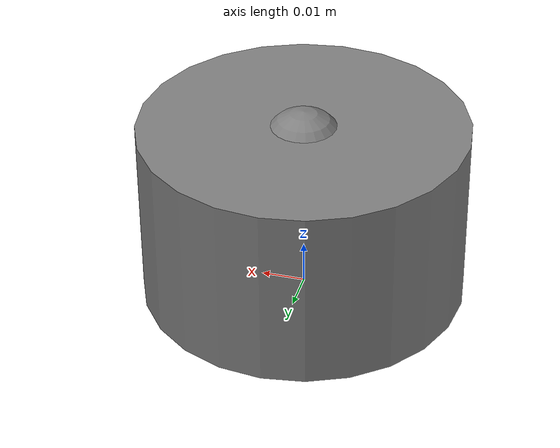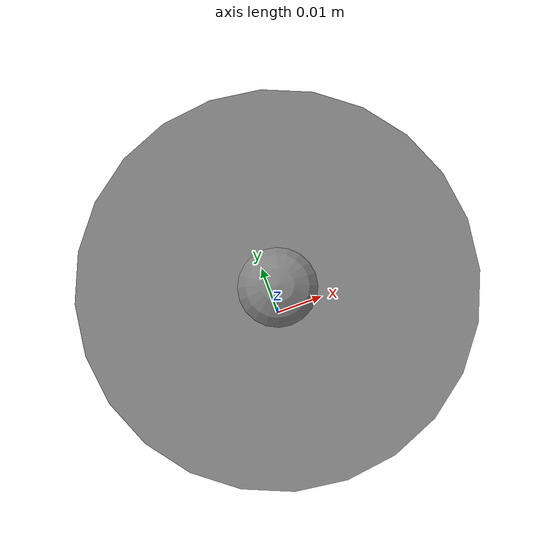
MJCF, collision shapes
<mujoco model="ft300s">
  <compiler angle="radian"/>

  <default>
    <default class="ft300s">
      <mesh scale="0.001 0.001 0.001"/>
    </default>
  </default>

  <asset>
    <material name="ft300s_body" rgba="0.15 0.15 0.15 1" specular="0.3" shininess="0.4"/>
    <mesh class="ft300s" name="ft300s" file="../../../assets/ft300s/ft300s.stl"/>
  </asset>

  <worldbody>
    <body name="mount" pos="0 0 0" quat="1 0 0 0">
      <inertial mass="0.300" pos="0 0 0.0211" diaginertia="0.000193 0.000193 0.000297"/>
      <geom type="mesh" mesh="ft300s" material="ft300s_body" pos="0 0 0.0422" quat="0 1 0 0"
        contype="0" conaffinity="0" group="2"/>
      <geom type="cylinder" size="0.0375 0.0211" pos="0 0 0.0211" group="3"/>
      <body name="gripper_mount" pos="0 0 0.0422">
        <site name="ft_sensor" pos="0 0 -0.0065" size="0.01"/>
        <site name="tool_output" pos="0 0 0" size="0.001"/>
      </body>
    </body>
  </worldbody>

  <sensor>
    <force name="ft_force" site="ft_sensor"/>
    <torque name="ft_torque" site="ft_sensor"/>
  </sensor>
</mujoco>
